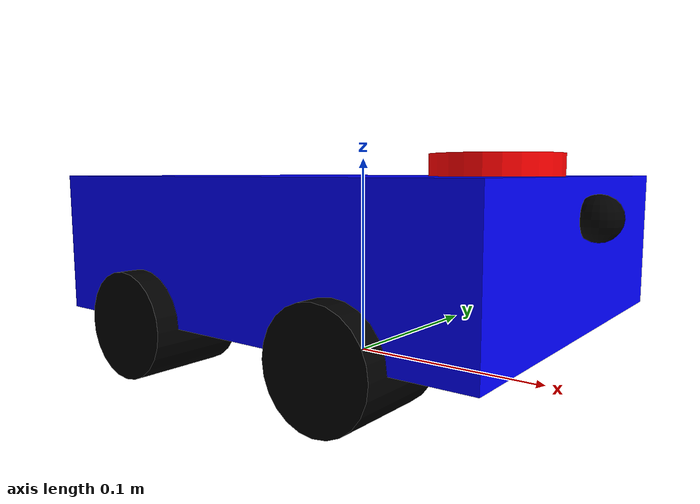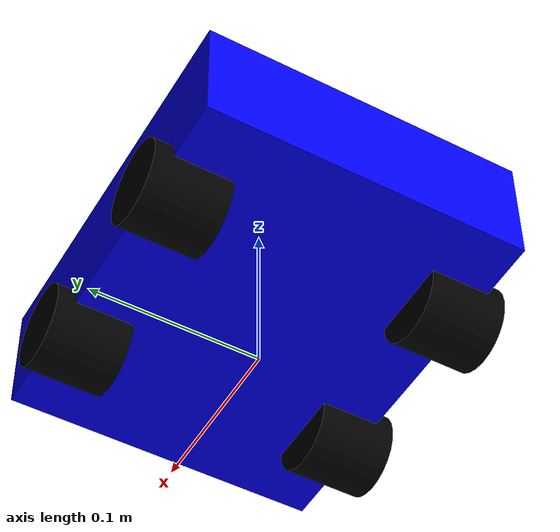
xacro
<?xml version="1.0"?>
<robot xmlns:xacro="http://www.ros.org/wiki/xacro" name="ackermann_car">
    <!-- 统一定义一次参数与材质 -->
    <xacro:include filename="common.xacro"/>
    <!-- 引入车身模块 -->
    <xacro:include filename="car/chassis.xacro"/>
    <!-- 引入车轮模块 -->
    <xacro:include filename="car/wheels.xacro"/>
    <!-- 引入雷达模块 -->
    <xacro:include filename="car/laser.xacro"/>
    <!-- 引入 IMU 模块 -->
    <xacro:include filename="car/imu.xacro"/>
    <!-- 引入 sonar 模块 -->
    <xacro:include filename="car/sonar.xacro"/>
    <!-- 引入控制模块 -->
    <xacro:include filename="car/control.xacro"/>

    <!-- 调用宏实例化模型 -->
    <xacro:chassis_xacro/>
    <xacro:wheels_xacro/>
    <xacro:laser_xacro/>
    <xacro:imu_xacro/>
    <xacro:sonar_xacro/>

</robot>

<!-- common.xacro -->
<robot xmlns:xacro="http://www.ros.org/wiki/xacro">
    <!-- ================= 机械尺寸参数（单位：米） ================= -->
    <!-- 底盘尺寸：230x187.6x67mm -->
    <xacro:property name="chassis_length" value="0.230"/>
    <xacro:property name="chassis_width" value="0.1876"/>
    <xacro:property name="chassis_height" value="0.067"/>

    <!-- 轴距与轮距（从图纸提取：轴距112mm，轮距164mm） -->
    <xacro:property name="wheelbase" value="0.112"/>
    <xacro:property name="track" value="0.164"/>

    <!-- 车轮尺寸：直径49mm，宽度45mm -->
    <xacro:property name="wheel_radius" value="0.0245"/>
    <xacro:property name="wheel_width" value="0.045"/>

    <!-- ================= 质量参数（总重0.9kg） ================= -->
    <xacro:property name="chassis_mass" value="0.8"/> <!-- 底盘重0.8kg -->
    <xacro:property name="wheel_mass" value="0.025"/> <!-- 每个轮子0.025kg，4个合计0.1kg -->

    <!-- 底盘离地高度（让车轮刚好接触地面） -->
    <xacro:property name="chassis_z_offset" value="0.0245"/>

    <!-- ================= 材质定义 ================= -->
    <material name="blue"><color rgba="0 0 1 1"/></material>
    <material name="black"><color rgba="0 0 0 1"/></material>
    <material name="red"><color rgba="1 0 0 1"/></material>
    <material name="green"><color rgba="0 1 0 1"/></material>

    <!-- ================= 惯性矩阵宏 ================= -->
    <xacro:macro name="box_inertia" params="m x y z">
        <inertial>
            <mass value="${m}"/>
            <inertia ixx="${m*(y*y+z*z)/12}" ixy="0" ixz="0"
                     iyy="${m*(x*x+z*z)/12}" iyz="0"
                     izz="${m*(x*x+y*y)/12}"/>
        </inertial>
    </xacro:macro>

    <xacro:macro name="cylinder_inertia" params="m r l">
        <inertial>
            <mass value="${m}"/>
            <inertia ixx="${m*(3*r*r+l*l)/12}" ixy="0" ixz="0"
                     iyy="${m*(3*r*r+l*l)/12}" iyz="0"
                     izz="${m*r*r/2}"/>
        </inertial>
    </xacro:macro>
</robot>

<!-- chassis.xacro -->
<robot xmlns:xacro="http://www.ros.org/wiki/xacro">
    <xacro:macro name="chassis_xacro">
    <!-- 根节点（地面投影） -->
    <link name="base_footprint"/>

    <!-- 把 base_link 放到车轮轴的高度，确保车轮刚好接触地面 -->
    <joint name="base_joint" type="fixed">
        <parent link="base_footprint"/>
        <child link="base_link"/>
        <origin xyz="0 0 ${chassis_z_offset}" rpy="0 0 0"/>
    </joint>

    <!-- 车身主体 -->
    <link name="base_link">
        <visual>
             <!-- 视觉偏移：让底盘中心处于底盘几何中心，而不是轴心（因为底盘比车轴高一点点） -->
            <origin xyz="0 0 ${chassis_height/2}" rpy="0 0 0"/>
            <geometry><box size="${chassis_length} ${chassis_width} ${chassis_height}"/></geometry>
            <material name="blue"/>
        </visual>
        <collision>
            <origin xyz="0 0 ${chassis_height/2}" rpy="0 0 0"/>
            <geometry><box size="${chassis_length} ${chassis_width} ${chassis_height}"/></geometry>
        </collision>
        <!-- 底盘质量和惯性矩阵 -->
        <xacro:box_inertia m="${chassis_mass}" x="${chassis_length}" y="${chassis_width}" z="${chassis_height}"/>
    </link>

    <!-- Gazebo 专属标签：让底盘在仿真里是蓝色的 -->
    <gazebo reference="base_link">
        <material>Gazebo/Blue</material>
        <mu1>0.2</mu1>  <!-- 底盘的摩擦系数调小，防止卡在地面上 -->
        <mu2>0.2</mu2>
    </gazebo>
    </xacro:macro>
</robot>

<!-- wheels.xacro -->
<robot xmlns:xacro="http://www.ros.org/wiki/xacro">
    <xacro:macro name="wheels_xacro" >
    <!-- ================= 1. 后轮驱动系统（后轮转向和滚动） ================= -->
    <!--prefix:部件名字前缀，y_reflect:左右镜像标志，1表示左轮，-1表示右轮-->

    <xacro:macro name="rear_wheel" params="prefix y_reflect">
        <link name="${prefix}_wheel_link">
            <visual>
                <geometry><cylinder radius="${wheel_radius}" length="${wheel_width}"/></geometry>
                <material name="black"/>
            </visual>
            <collision>
                <origin xyz="0 0 0" rpy="0 0 0"/>
                <geometry><cylinder radius="${wheel_radius}" length="${wheel_width}"/></geometry>
            </collision>
            <!-- 惯性矩阵 -->
            <xacro:cylinder_inertia m="${wheel_mass}" r="${wheel_radius}" l="${wheel_width}"/>
        </link>

        <!-- 后轮驱动关节（连续旋转）(加入 dynamics) -->
        <joint name="${prefix}_wheel_joint" type="continuous">
            <parent link="base_link"/>
            <child link="${prefix}_wheel_link"/>
            <!-- 后轮位置：轴距的一半（负X轴），轮距的一半（Y轴镜像） -->
            <!-- rpy=+90° 后，关节局部 +z 指向世界 -y；取 -z 才能让
                 “正速度 = 车向前 (+x)” 与控制器/里程计符号一致 -->
            <origin xyz="${-wheelbase/2} ${y_reflect * track/2} 0" rpy="1.5707 0 0"/>
            <axis xyz="0 0 -1"/>
            <limit effort="10.0" velocity="45.0"/>
        </joint>
    </xacro:macro>
    <!--左右后轮-->
    <xacro:rear_wheel prefix="left_rear" y_reflect="1"/>
    <xacro:rear_wheel prefix="right_rear" y_reflect="-1"/>

    <!-- ================= 2. 前轮转向系统（阿克曼转向） ================= -->
    <xacro:macro name="front_steering_wheel" params="prefix y_reflect">
        <!-- 转向节（作为转向电机和车轮的中间连接件） -->
        <link name="${prefix}_steer_link">
            <visual>
                <geometry><cylinder radius="0.01" length="0.02"/></geometry>
                <material name="red"/>
            </visual>
            <inertial><mass value="0.1"/><inertia ixx="0.001" ixy="0" ixz="0" iyy="0.001" iyz="0" izz="0.001"/></inertial>
        </link>

        <!-- 转向关节（绕Z轴旋转，对应舵机） -->
        <joint name="${prefix}_steer_joint" type="revolute">
            <parent link="base_link"/>
            <child link="${prefix}_steer_link"/>
            <!-- 前轮位置：轴距的一半（正X轴） -->
            <origin xyz="${wheelbase/2} ${y_reflect * track/2} 0" rpy="0 0 0"/>
            <axis xyz="0 0 1"/>
            <!-- 加入阻尼和摩擦，防止转向轮自发抖动 -->
            <dynamics damping="2.0" friction="0.5"/>

            <!-- 限制最大转向角度-->
            <limit effort="10" lower="-0.235" upper="0.235" velocity="2.0"/>
        </joint>

        <!-- 前轮轮子 -->
        <link name="${prefix}_wheel_link">
            <visual>
                <geometry><cylinder radius="${wheel_radius}" length="${wheel_width}"/></geometry>
                <material name="black"/>
            </visual>
            <collision>
                <geometry><cylinder radius="${wheel_radius}" length="${wheel_width}"/></geometry>
            </collision>
            <xacro:cylinder_inertia m="${wheel_mass}" r="${wheel_radius}" l="${wheel_width}"/>
        </link>

        <!-- 前轮滚动关节（连续旋转） -->
        <joint name="${prefix}_wheel_joint" type="continuous">
            <parent link="${prefix}_steer_link"/>
            <child link="${prefix}_wheel_link"/>
            <origin xyz="0 0 0" rpy="1.5707 0 0"/>
            <axis xyz="0 0 -1"/>
            <limit effort="10.0" velocity="45.0"/>
        </joint>
    </xacro:macro>

    <xacro:front_steering_wheel prefix="left_front" y_reflect="1"/>
    <xacro:front_steering_wheel prefix="right_front" y_reflect="-1"/>

        <!-- Gazebo 专属标签：设置四个轮子的颜色和摩擦力 -->
    <gazebo reference="left_rear_wheel_link">
        <material>Gazebo/Black</material>
        <mu1>1.0</mu1>  <!-- 滚动方向摩擦系数 -->
        <mu2>1.0</mu2>  <!-- 侧滑方向摩擦系数 -->
    </gazebo>
    <gazebo reference="right_rear_wheel_link">
        <material>Gazebo/Black</material>
        <mu1>1.0</mu1>
        <mu2>1.0</mu2>
    </gazebo>
    <!-- 阿克曼车的四个轮子都需要足够的侧向抓地力（mu2），
         前轮 mu2=0.1 会让车头侧滑、无法按转角转弯 -->
    <gazebo reference="left_front_wheel_link">
        <material>Gazebo/Black</material>
        <mu1>1.0</mu1>
        <mu2>1.0</mu2>
    </gazebo>
    <gazebo reference="right_front_wheel_link">
        <material>Gazebo/Black</material>
        <mu1>1.0</mu1>
        <mu2>1.0</mu2>
    </gazebo>
    </xacro:macro>
</robot>

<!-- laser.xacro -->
<robot xmlns:xacro="http://www.ros.org/wiki/xacro">
    <xacro:macro name="laser_xacro">
    <!-- ================= 1. 2D 雷达物理实体 ================= -->
    <link name="laser_link">
        <visual>
            <geometry>
                <cylinder radius="0.03" length="0.02"/> <!-- 红色小圆柱体 -->
            </geometry>
            <material name="red"/>
        </visual>
        <collision>
            <geometry>
                <cylinder radius="0.03" length="0.02"/>
            </geometry>
        </collision>
        <inertial>
            <mass value="0.1"/>
            <inertia ixx="0.0001" ixy="0" ixz="0" iyy="0.0001" iyz="0" izz="0.0001"/>
        </inertial>
    </link>

    <!-- 把雷达固定在底盘顶部中心 -->
    <joint name="laser_joint" type="fixed">
        <parent link="base_link"/>
        <child link="laser_link"/>
        <origin xyz="0.074 0 0.067" rpy="0 0 0"/> <!-- 高度 0.067m -->
    </joint>

    <!-- Gazebo 专属雷达传感器插件 -->
    <gazebo reference="laser_link">
        <material>Gazebo/Red</material>
        <sensor type="ray" name="lidar2d_sensor">
            <update_rate>10</update_rate>
            <visualize>false</visualize>
            <ray>
                <scan>
                    <horizontal>
                        <samples>360</samples>
                        <min_angle>-3.14159</min_angle>
                        <max_angle>3.14159</max_angle>
                    </horizontal>
                </scan>
                <range>
                    <min>0.1</min>
                    <max>10.0</max>
                </range>
            </ray>
            <plugin name="laser_controller" filename="libgazebo_ros_ray_sensor.so">
                <ros>
                    <remapping>~/out:=scan</remapping>
                </ros>
                <output_type>sensor_msgs/LaserScan</output_type>
                <frame_name>laser_link</frame_name>
            </plugin>
        </sensor>
    </gazebo>
    </xacro:macro>
</robot>

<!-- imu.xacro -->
<robot xmlns:xacro="http://www.ros.org/wiki/xacro">
    <xacro:macro name="imu_xacro" >
     <!-- ================= 2. IMU 物理实体 ================= -->
    <link name="imu_link">
        <visual>
            <geometry>
                <box size="0.02 0.02 0.02"/> <!-- 一个小方块 -->
            </geometry>
            <material name="green"/>
        </visual>
        <inertial>
            <mass value="0.01"/>
            <inertia ixx="1e-6" ixy="0" ixz="0" iyy="1e-6" iyz="0" izz="1e-6"/>
        </inertial>
    </link>

    <joint name="imu_joint" type="fixed">
        <parent link="base_link"/>
        <child link="imu_link"/>
        <origin xyz="0 0 0.02" rpy="0 0 0"/>
    </joint>

    <gazebo reference="imu_link">
        <sensor name="imu_sensor" type="imu">
            <!-- 加上这行，强制它一直运行 -->
            <always_on>true</always_on>
            <!-- 从 200 降低到 100，减轻虚拟机 CPU 负担，避免物理引擎跑满导致丢包 -->
            <update_rate>100</update_rate>
            <!-- 🔥 核心修复：必须配置噪声参数，否则 Gazebo 不输出数据 -->
            <imu>
                <angular_velocity>
                    <x><noise type="gaussian"><mean>0.0</mean><stddev>1e-3</stddev><bias_mean>0.005</bias_mean><bias_stddev>0.001</bias_stddev></noise></x>
                    <y><noise type="gaussian"><mean>0.0</mean><stddev>1e-3</stddev><bias_mean>0.005</bias_mean><bias_stddev>0.001</bias_stddev></noise></y>
                    <z><noise type="gaussian"><mean>0.0</mean><stddev>1e-3</stddev><bias_mean>0.005</bias_mean><bias_stddev>0.001</bias_stddev></noise></z>
                </angular_velocity>
                <linear_acceleration>
                    <x><noise type="gaussian"><mean>0.0</mean><stddev>1.7e-2</stddev><bias_mean>0.1</bias_mean><bias_stddev>0.001</bias_stddev></noise></x>
                    <y><noise type="gaussian"><mean>0.0</mean><stddev>1.7e-2</stddev><bias_mean>0.1</bias_mean><bias_stddev>0.001</bias_stddev></noise></y>
                    <z><noise type="gaussian"><mean>0.0</mean><stddev>1.7e-2</stddev><bias_mean>0.1</bias_mean><bias_stddev>0.001</bias_stddev></noise></z>
                </linear_acceleration>
            </imu>

            <plugin name="imu_plugin" filename="libgazebo_ros_imu_sensor.so">
                <ros>
                    <remapping>~/out:=imu</remapping>
                </ros>
                 <!-- 推荐加上这个，避免初始姿态爆炸 -->
                <initial_orientation_as_reference>false</initial_orientation_as_reference>
                <frame_name>imu_link</frame_name>
            </plugin>
        </sensor>
    </gazebo>
    </xacro:macro>
</robot>

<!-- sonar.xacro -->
<robot xmlns:xacro="http://www.ros.org/wiki/xacro">
    <xacro:macro name="sonar_xacro">
        <!-- ================= 超声波传感器 (模拟) ================= -->
    <link name="sonar_link">
        <visual>
            <geometry><sphere radius="0.01"/></geometry>
            <material name="black"/>
        </visual>
        <inertial>
            <mass value="0.05"/>
            <inertia ixx="1e-5" ixy="0" ixz="0" iyy="1e-5" iyz="0" izz="1e-5"/>
        </inertial>
    </link>
    <joint name="sonar_joint" type="fixed">
        <parent link="base_link"/>
        <child link="sonar_link"/>
        <!-- 安装在车头正前方，高度与雷达相同 -->
        <origin xyz="0.12 0 0.05" rpy="0 0 0"/>
    </joint>

    <gazebo reference="sonar_link">
        <sensor type="ray" name="sonar_sensor">
            <update_rate>20</update_rate>
            <visualize>true</visualize>
            <ray>
                <scan>
                    <horizontal>
                        <samples>1</samples> <!-- 超声波只有一根射线 -->
                        <min_angle>0</min_angle>
                        <max_angle>0</max_angle>
                    </horizontal>
                </scan>
                <range>
                    <min>0.02</min> <!-- 最小 2cm -->
                    <max>2.0</max>  <!-- 最大 2 米 -->
                </range>
            </ray>
            <plugin name="sonar_controller" filename="libgazebo_ros_ray_sensor.so">
                <ros>
                    <!-- 话题名为 /ultrasonic -->
                    <remapping>~/out:=ultrasonic</remapping>
                </ros>
                <output_type>sensor_msgs/LaserScan</output_type>
                <frame_name>sonar_link</frame_name>
            </plugin>
        </sensor>
    </gazebo>

    </xacro:macro>
</robot>
